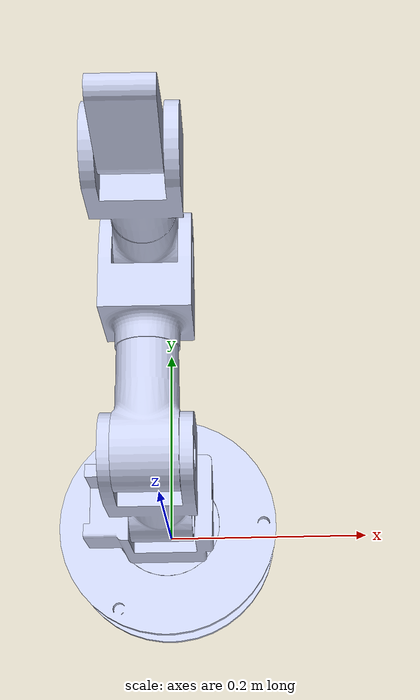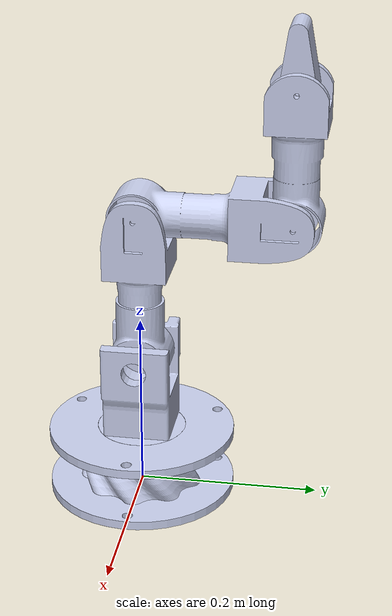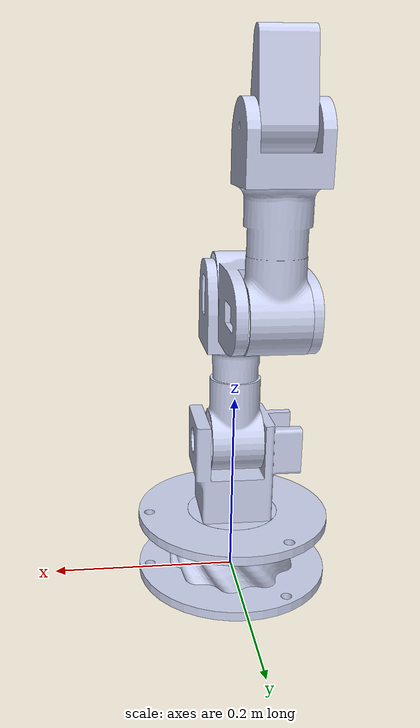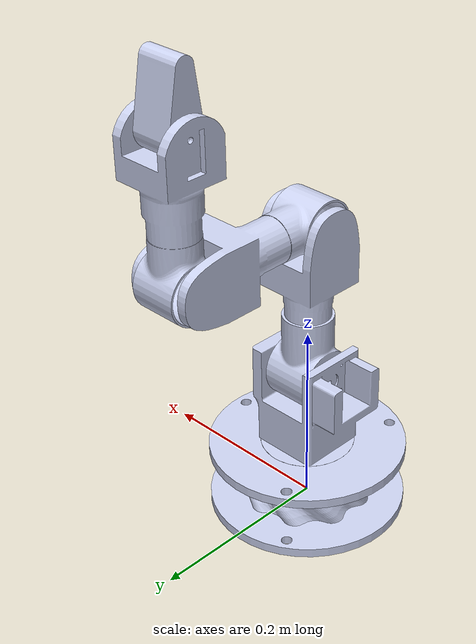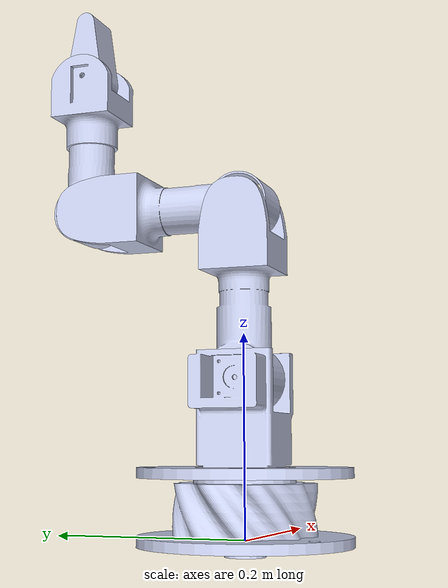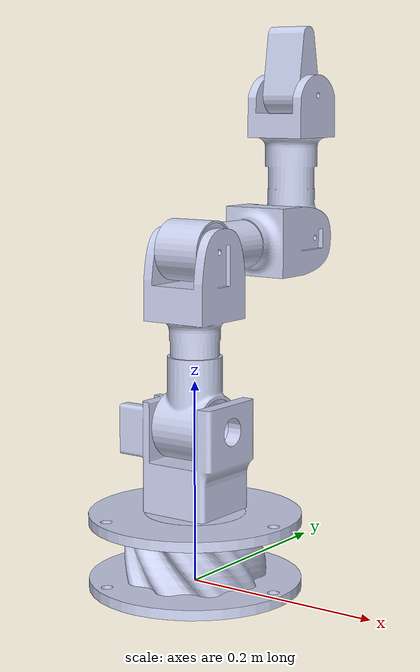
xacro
<robot name="final_arm_urdf">

  <link name="base_link">
    <inertial>
      <origin xyz="-1.2317E-16 -2.498E-16 0.028906" rpy="0 0 0" />
      <mass value="0.59426" />
      <inertia ixx="0.0018342" ixy="-8.7929E-18" ixz="-2.6015E-19" iyy="0.0018342" iyz="1.9519E-19" izz="0.0036586" />
    </inertial>
    <visual>
      <origin xyz="0 0 0" rpy="0 0 0" />
      <geometry>
        <mesh filename="package://final_arm_urdf/meshes/visual/base_link.STL" />
      </geometry>
      <material name="">
        <color rgba="0.79216 0.81961 0.93333 1" />
      </material>
    </visual>
    <collision>
      <origin xyz="0 0 0" rpy="0 0 0" />
      <geometry>
        <mesh filename="package://final_arm_urdf/meshes/collision/base_link.STL" />
      </geometry>
    </collision>
  </link>
  <link name="link1">
    <inertial>
      <origin xyz="-0.0011483 1.4724E-06 0.061573" rpy="0 0 0" />
      <mass value="1.2427" />
      <inertia ixx="0.0017137" ixy="-2.8848E-09" ixz="4.6536E-05" iyy="0.00189" iyz="1.4625E-08" izz="0.0021854" />
    </inertial>
    <visual>
      <origin xyz="0 0 0" rpy="0 0 0" />
      <geometry>
        <mesh filename="package://final_arm_urdf/meshes/visual/link1.STL" />
      </geometry>
      <material name="">
        <color rgba="0.79216 0.81961 0.93333 1" />
      </material>
    </visual>
    <collision>
      <origin xyz="0 0 0" rpy="0 0 0" />
      <geometry>
        <mesh filename="package://final_arm_urdf/meshes/collision/link1.STL" />
      </geometry>
    </collision>
  </link>
  <joint name="joint1" type="revolute">
    <origin xyz="0 0 0" rpy="0 0 0" />
    <parent link="base_link" />
    <child link="link1" />
    <axis xyz="0 0 1" />
    <limit lower="0" upper="6.284" effort="300" velocity="3" />
    <calibration rising="0" falling="6.284" />
    <dynamics damping="0" friction="0" />
    <safety_controller soft_upper_limit="6.284" soft_lower_limit="0" k_position="0" k_velocity="0" />
  </joint>
  <link name="link2">
    <inertial>
      <origin xyz="7.0526E-07 0.092011 -0.029204" rpy="0 0 0" />
      <mass value="0.45196" />
      <inertia ixx="0.0004059" ixy="-7.0028E-09" ixz="-4.6156E-09" iyy="0.00031391" iyz="-3.6133E-06" izz="0.0003795" />
    </inertial>
    <visual>
      <origin xyz="0 0 0" rpy="0 0 0" />
      <geometry>
        <mesh filename="package://final_arm_urdf/meshes/visual/link2.STL" />
      </geometry>
      <material name="">
        <color rgba="0.79216 0.81961 0.93333 1" />
      </material>
    </visual>
    <collision>
      <origin xyz="0 0 0" rpy="0 0 0" />
      <geometry>
        <mesh filename="package://final_arm_urdf/meshes/collision/link2.STL" />
      </geometry>
    </collision>
  </link>
  <joint name="joint2" type="revolute">
    <origin xyz="0.0275 0 0.15538" rpy="1.5708 0 1.5708" />
    <parent link="link1" />
    <child link="link2" />
    <axis xyz="0 0 -1" />
    <limit lower="-1.571" upper="1.571" effort="300" velocity="3" />
    <calibration rising="0" falling="1.571" />
    <dynamics damping="0" friction="0" />
    <safety_controller soft_upper_limit="1.571" soft_lower_limit="-1.571" k_position="0" k_velocity="0" />
  </joint>
  <link name="link3">
    <inertial>
      <origin xyz="0.10219 -3.8224E-07 -0.025347" rpy="0 0 0" />
      <mass value="0.38558" />
      <inertia ixx="0.00026816" ixy="6.2277E-09" ixz="3.6385E-06" iyy="0.00032917" iyz="3.0322E-09" izz="0.00029965" />
    </inertial>
    <visual>
      <origin xyz="0 0 0" rpy="0 0 0" />
      <geometry>
        <mesh filename="package://final_arm_urdf/meshes/visual/link3.STL" />
      </geometry>
      <material name="">
        <color rgba="0.79216 0.81961 0.93333 1" />
      </material>
    </visual>
    <collision>
      <origin xyz="0 0 0" rpy="0 0 0" />
      <geometry>
        <mesh filename="package://final_arm_urdf/meshes/collision/link3.STL" />
      </geometry>
    </collision>
  </link>
  <joint name="joint3" type="revolute">
    <origin xyz="-0.00093484 0.17284 -0.0025" rpy="0 0 0" />
    <parent link="link2" />
    <child link="link3" />
    <axis xyz="0 0 1" />
    <limit lower="0" upper="3.142" effort="300" velocity="3" />
    <calibration rising="0" falling="3.142" />
    <dynamics damping="0" friction="0" />
    <safety_controller soft_upper_limit="3.142" soft_lower_limit="0" k_position="0" k_velocity="0" />
  </joint>
  <link name="link4">
    <inertial>
      <origin xyz="-2.4945E-06 0.090846 -0.024558" rpy="0 0 0" />
      <mass value="0.3087" />
      <inertia ixx="0.00021105" ixy="1.2263E-08" ixz="-2.3037E-08" iyy="0.0001769" iyz="-2.0811E-06" izz="0.00019916" />
    </inertial>
    <visual>
      <origin xyz="0 0 0" rpy="0 0 0" />
      <geometry>
        <mesh filename="package://final_arm_urdf/meshes/visual/link4.STL" />
      </geometry>
      <material name="">
        <color rgba="0.79216 0.81961 0.93333 1" />
      </material>
    </visual>
    <collision>
      <origin xyz="0 0 0" rpy="0 0 0" />
      <geometry>
        <mesh filename="package://final_arm_urdf/meshes/collision/link4.STL" />
      </geometry>
    </collision>
  </link>
  <joint name="joint4" type="revolute">
    <origin xyz="0.16934 0.00093484 0" rpy="0 0 0" />
    <parent link="link3" />
    <child link="link4" />
    <axis xyz="0 0 -1" />
    <limit lower="0" upper="3.142" effort="300" velocity="3" />
    <calibration rising="0" falling="3.142" />
    <dynamics damping="0" friction="0" />
    <safety_controller soft_upper_limit="3.142" soft_lower_limit="0" k_position="0" k_velocity="0" />
  </joint>
  <link name="link5">
    <inertial>
      <origin xyz="-0.0003626 0.020629 -0.033" rpy="0 0 0" />
      <mass value="0.11251" />
      <inertia ixx="8.0778E-05" ixy="9.3321E-07" ixz="3.4347E-21" iyy="2.7703E-05" iyz="-4.5715E-21" izz="7.2177E-05" />
    </inertial>
    <visual>
      <origin xyz="0 0 0" rpy="0 0 0" />
      <geometry>
        <mesh filename="package://final_arm_urdf/meshes/visual/link5.STL" />
      </geometry>
      <material name="">
        <color rgba="0.79216 0.81961 0.93333 1" />
      </material>
    </visual>
    <collision>
      <origin xyz="0 0 0" rpy="0 0 0" />
      <geometry>
        <mesh filename="package://final_arm_urdf/meshes/collision/link5.STL" />
      </geometry>
    </collision>
  </link>
  <joint name="joint5" type="revolute">
    <origin xyz="0 0.14633 0.0075" rpy="0 0 0" />
    <parent link="link4" />
    <child link="link5" />
    <axis xyz="0 0 1" />
    <limit lower="-1.571" upper="1.571" effort="300" velocity="3" />
    <calibration rising="0" falling="1.571" />
    <dynamics damping="0" friction="0" />
    <safety_controller soft_upper_limit="1.571" soft_lower_limit="-1.571" k_position="0" k_velocity="0" />
  </joint>
</robot>
